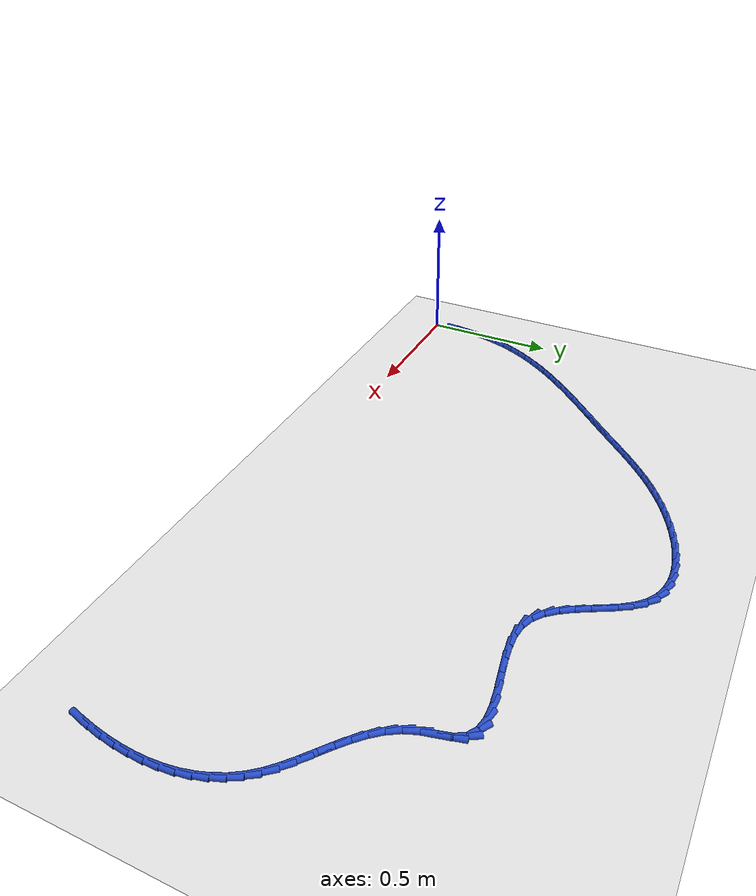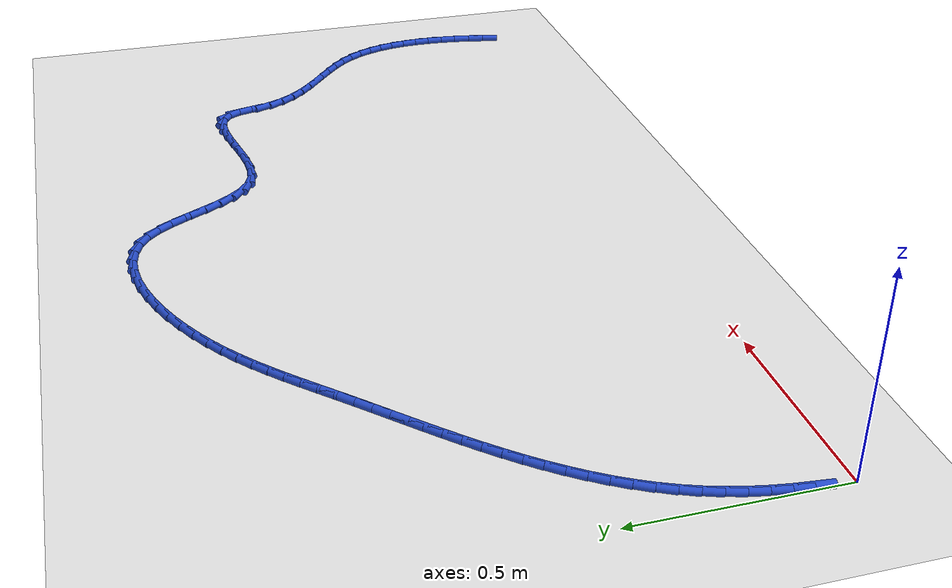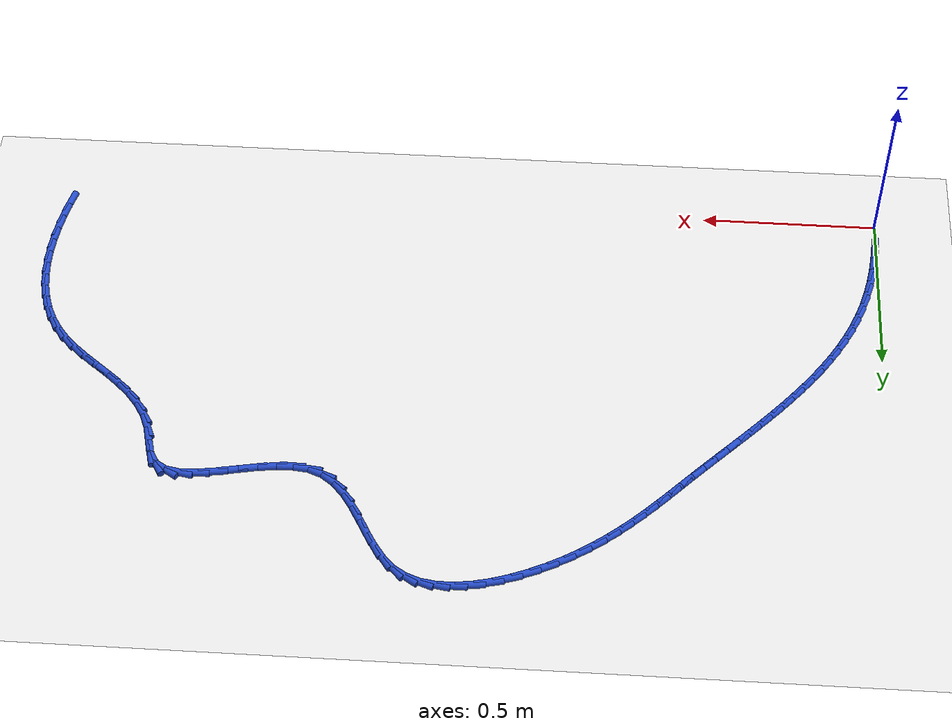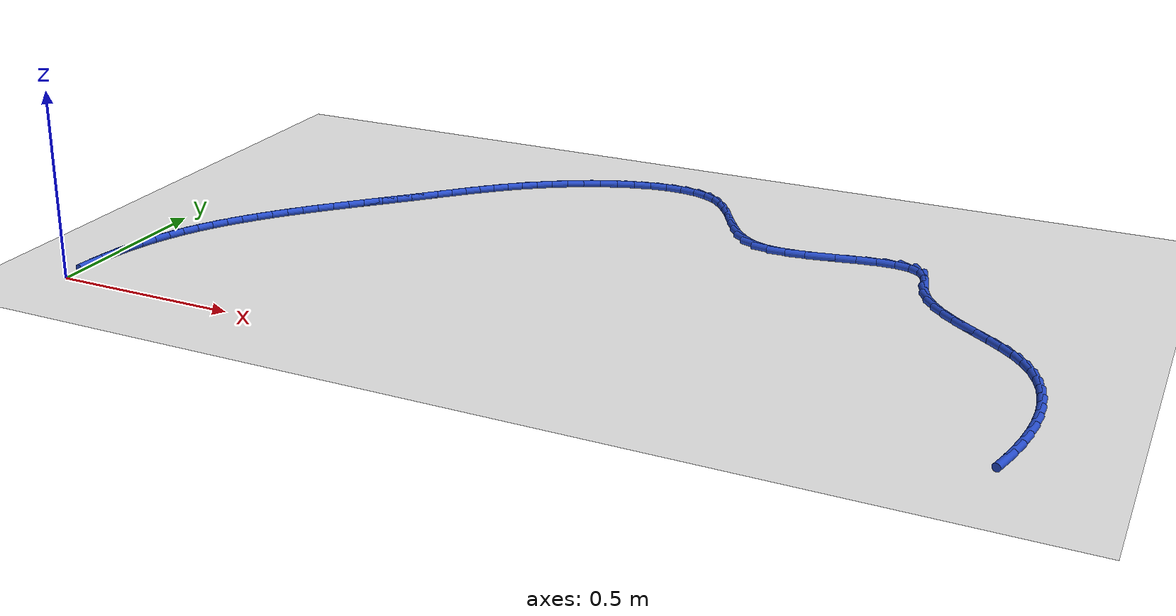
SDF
<sdf version="1.6">
 <world name="default">
  <model name="ground_plane">
   <static>1</static>
   <link name="link">
    <collision name="collision">
     <geometry><plane><normal>0 0 1</normal><size>100 100</size></plane></geometry>
     <surface><friction><ode><mu>100</mu><mu2>50</mu2></ode></friction></surface>
    </collision>
    <visual name="visual">
     <cast_shadows>0</cast_shadows>
     <geometry><plane><normal>0 0 1</normal><size>100 100</size></plane></geometry>
     <material>
      <script><uri>file://media/materials/scripts/gazebo.material</uri><name>Gazebo/WhiteGlow</name></script>
     </material>
    </visual>
   </link>
  </model>
  <model name="line">
   <link name="link_2">
    <pose>0.003360584371505938 0.08993041844704301 0.01 0 1.57 1.467205646943557</pose>
    <collision name="collision">
     <geometry><cylinder><radius>0.01</radius><length>0.08</length></cylinder></geometry>
    </collision>
    <visual name="visual">
     <material>
      <script><name>Gazebo/Blue</name><uri>file://media/materials/scripts/gazebo.material</uri></script>
     </material>
     <geometry><cylinder><radius>0.01</radius><length>0.08</length></cylinder></geometry>
    </visual>
   </link>
   <link name="link_3">
    <pose>0.008009777035274087 0.13465018043659344 0.01 0 1.57 1.4210333260894008</pose>
    <collision name="collision">
     <geometry><cylinder><radius>0.01</radius><length>0.08</length></cylinder></geometry>
    </collision>
    <visual name="visual">
     <material>
      <script><name>Gazebo/Blue</name><uri>file://media/materials/scripts/gazebo.material</uri></script>
     </material>
     <geometry><cylinder><radius>0.01</radius><length>0.08</length></cylinder></geometry>
    </visual>
   </link>
   <link name="link_4">
    <pose>0.014704103184937301 0.1790149581548181 0.01 0 1.57 1.3730587600862478</pose>
    <collision name="collision">
     <geometry><cylinder><radius>0.01</radius><length>0.08</length></cylinder></geometry>
    </collision>
    <visual name="visual">
     <material>
      <script><name>Gazebo/Blue</name><uri>file://media/materials/scripts/gazebo.material</uri></script>
     </material>
     <geometry><cylinder><radius>0.01</radius><length>0.08</length></cylinder></geometry>
    </visual>
   </link>
   <link name="link_5">
    <pose>0.023492962695909274 0.22288123701520812 0.01 0 1.57 1.3230601992094901</pose>
    <collision name="collision">
     <geometry><cylinder><radius>0.01</radius><length>0.08</length></cylinder></geometry>
    </collision>
    <visual name="visual">
     <material>
      <script><name>Gazebo/Blue</name><uri>file://media/materials/scripts/gazebo.material</uri></script>
     </material>
     <geometry><cylinder><radius>0.01</radius><length>0.08</length></cylinder></geometry>
    </visual>
   </link>
   <link name="link_6">
    <pose>0.034425755443603705 0.26610550243125464 0.01 0 1.57 1.270833187727479</pose>
    <collision name="collision">
     <geometry><cylinder><radius>0.01</radius><length>0.08</length></cylinder></geometry>
    </collision>
    <visual name="visual">
     <material>
      <script><name>Gazebo/Blue</name><uri>file://media/materials/scripts/gazebo.material</uri></script>
     </material>
     <geometry><cylinder><radius>0.01</radius><length>0.08</length></cylinder></geometry>
    </visual>
   </link>
   <link name="link_7">
    <pose>0.04755188130343429 0.3085442398164489 0.01 0 1.57 1.2161987674992394</pose>
    <collision name="collision">
     <geometry><cylinder><radius>0.01</radius><length>0.08</length></cylinder></geometry>
    </collision>
    <visual name="visual">
     <material>
      <script><name>Gazebo/Blue</name><uri>file://media/materials/scripts/gazebo.material</uri></script>
     </material>
     <geometry><cylinder><radius>0.01</radius><length>0.08</length></cylinder></geometry>
    </visual>
   </link>
   <link name="link_8">
    <pose>0.06292074015081472 0.350053934584282 0.01 0 1.57 1.159440759616084</pose>
    <collision name="collision">
     <geometry><cylinder><radius>0.01</radius><length>0.08</length></cylinder></geometry>
    </collision>
    <visual name="visual">
     <material>
      <script><name>Gazebo/Blue</name><uri>file://media/materials/scripts/gazebo.material</uri></script>
     </material>
     <geometry><cylinder><radius>0.01</radius><length>0.08</length></cylinder></geometry>
    </visual>
   </link>
   <link name="link_9">
    <pose>0.08056701617637128 0.3905044262941944 0.01 0 1.57 1.1045927002458515</pose>
    <collision name="collision">
     <geometry><cylinder><radius>0.01</radius><length>0.08</length></cylinder></geometry>
    </collision>
    <visual name="visual">
     <material>
      <script><name>Gazebo/Blue</name><uri>file://media/materials/scripts/gazebo.material</uri></script>
     </material>
     <geometry><cylinder><radius>0.01</radius><length>0.08</length></cylinder></geometry>
    </visual>
   </link>
   <link name="link_10">
    <pose>0.10038657265252682 0.4298915313004052 0.01 0 1.57 1.0540894822819367</pose>
    <collision name="collision">
     <geometry><cylinder><radius>0.01</radius><length>0.08</length></cylinder></geometry>
    </collision>
    <visual name="visual">
     <material>
      <script><name>Gazebo/Blue</name><uri>file://media/materials/scripts/gazebo.material</uri></script>
     </material>
     <geometry><cylinder><radius>0.01</radius><length>0.08</length></cylinder></geometry>
    </visual>
   </link>
   <link name="link_11">
    <pose>0.12219897173619831 0.46828030746694216 0.01 0 1.57 1.0081014676095499</pose>
    <collision name="collision">
     <geometry><cylinder><radius>0.01</radius><length>0.08</length></cylinder></geometry>
    </collision>
    <visual name="visual">
     <material>
      <script><name>Gazebo/Blue</name><uri>file://media/materials/scripts/gazebo.material</uri></script>
     </material>
     <geometry><cylinder><radius>0.01</radius><length>0.08</length></cylinder></geometry>
    </visual>
   </link>
   <link name="link_12">
    <pose>0.14582298590236115 0.5057365292760575 0.01 0 1.57 0.9666710400697017</pose>
    <collision name="collision">
     <geometry><cylinder><radius>0.01</radius><length>0.08</length></cylinder></geometry>
    </collision>
    <visual name="visual">
     <material>
      <script><name>Gazebo/Blue</name><uri>file://media/materials/scripts/gazebo.material</uri></script>
     </material>
     <geometry><cylinder><radius>0.01</radius><length>0.08</length></cylinder></geometry>
    </visual>
   </link>
   <link name="link_13">
    <pose>0.17107738762599062 0.5423259712100036 0.01 0 1.57 0.9297634189427066</pose>
    <collision name="collision">
     <geometry><cylinder><radius>0.01</radius><length>0.08</length></cylinder></geometry>
    </collision>
    <visual name="visual">
     <material>
      <script><name>Gazebo/Blue</name><uri>file://media/materials/scripts/gazebo.material</uri></script>
     </material>
     <geometry><cylinder><radius>0.01</radius><length>0.08</length></cylinder></geometry>
    </visual>
   </link>
   <link name="link_14">
    <pose>0.19778094938206198 0.5781144077510327 0.01 0 1.57 0.8972928860206639</pose>
    <collision name="collision">
     <geometry><cylinder><radius>0.01</radius><length>0.08</length></cylinder></geometry>
    </collision>
    <visual name="visual">
     <material>
      <script><name>Gazebo/Blue</name><uri>file://media/materials/scripts/gazebo.material</uri></script>
     </material>
     <geometry><cylinder><radius>0.01</radius><length>0.08</length></cylinder></geometry>
    </visual>
   </link>
   <link name="link_15">
    <pose>0.22575244364555064 0.6131676133813969 0.01 0 1.57 0.8691454915981053</pose>
    <collision name="collision">
     <geometry><cylinder><radius>0.01</radius><length>0.08</length></cylinder></geometry>
    </collision>
    <visual name="visual">
     <material>
      <script><name>Gazebo/Blue</name><uri>file://media/materials/scripts/gazebo.material</uri></script>
     </material>
     <geometry><cylinder><radius>0.01</radius><length>0.08</length></cylinder></geometry>
    </visual>
   </link>
   <link name="link_16">
    <pose>0.2548106428914319 0.6475513625833488 0.01 0 1.57 0.8451976060924352</pose>
    <collision name="collision">
     <geometry><cylinder><radius>0.01</radius><length>0.08</length></cylinder></geometry>
    </collision>
    <visual name="visual">
     <material>
      <script><name>Gazebo/Blue</name><uri>file://media/materials/scripts/gazebo.material</uri></script>
     </material>
     <geometry><cylinder><radius>0.01</radius><length>0.08</length></cylinder></geometry>
    </visual>
   </link>
   <link name="link_17">
    <pose>0.2847743195946811 0.6813314298391403 0.01 0 1.57 0.825330462949806</pose>
    <collision name="collision">
     <geometry><cylinder><radius>0.01</radius><length>0.08</length></cylinder></geometry>
    </collision>
    <visual name="visual">
     <material>
      <script><name>Gazebo/Blue</name><uri>file://media/materials/scripts/gazebo.material</uri></script>
     </material>
     <geometry><cylinder><radius>0.01</radius><length>0.08</length></cylinder></geometry>
    </visual>
   </link>
   <link name="link_18">
    <pose>0.3154622462302733 0.7145735896310237 0.01 0 1.57 0.8094412529035325</pose>
    <collision name="collision">
     <geometry><cylinder><radius>0.01</radius><length>0.08</length></cylinder></geometry>
    </collision>
    <visual name="visual">
     <material>
      <script><name>Gazebo/Blue</name><uri>file://media/materials/scripts/gazebo.material</uri></script>
     </material>
     <geometry><cylinder><radius>0.01</radius><length>0.08</length></cylinder></geometry>
    </visual>
   </link>
   <link name="link_19">
    <pose>0.3466931952731842 0.7473436164412515 0.01 0 1.57 0.7974514825935187</pose>
    <collision name="collision">
     <geometry><cylinder><radius>0.01</radius><length>0.08</length></cylinder></geometry>
    </collision>
    <visual name="visual">
     <material>
      <script><name>Gazebo/Blue</name><uri>file://media/materials/scripts/gazebo.material</uri></script>
     </material>
     <geometry><cylinder><radius>0.01</radius><length>0.08</length></cylinder></geometry>
    </visual>
   </link>
   <link name="link_20">
    <pose>0.37828593919838904 0.7797072847520758 0.01 0 1.57 0.7893133020622984</pose>
    <collision name="collision">
     <geometry><cylinder><radius>0.01</radius><length>0.08</length></cylinder></geometry>
    </collision>
    <visual name="visual">
     <material>
      <script><name>Gazebo/Blue</name><uri>file://media/materials/scripts/gazebo.material</uri></script>
     </material>
     <geometry><cylinder><radius>0.01</radius><length>0.08</length></cylinder></geometry>
    </visual>
   </link>
   <link name="link_21">
    <pose>0.410059250480863 0.8117303690457488 0.01 0 1.57 0.7850144102576346</pose>
    <collision name="collision">
     <geometry><cylinder><radius>0.01</radius><length>0.08</length></cylinder></geometry>
    </collision>
    <visual name="visual">
     <material>
      <script><name>Gazebo/Blue</name><uri>file://media/materials/scripts/gazebo.material</uri></script>
     </material>
     <geometry><cylinder><radius>0.01</radius><length>0.08</length></cylinder></geometry>
    </visual>
   </link>
   <link name="link_22">
    <pose>0.4418319015955813 0.8434786438045226 0.01 0 1.57 0.784582010984684</pose>
    <collision name="collision">
     <geometry><cylinder><radius>0.01</radius><length>0.08</length></cylinder></geometry>
    </collision>
    <visual name="visual">
     <material>
      <script><name>Gazebo/Blue</name><uri>file://media/materials/scripts/gazebo.material</uri></script>
     </material>
     <geometry><cylinder><radius>0.01</radius><length>0.08</length></cylinder></geometry>
    </visual>
   </link>
   <link name="link_23">
    <pose>0.4734226650175196 0.8750178835106501 0.01 0 1.57 0.7880861349082375</pose>
    <collision name="collision">
     <geometry><cylinder><radius>0.01</radius><length>0.08</length></cylinder></geometry>
    </collision>
    <visual name="visual">
     <material>
      <script><name>Gazebo/Blue</name><uri>file://media/materials/scripts/gazebo.material</uri></script>
     </material>
     <geometry><cylinder><radius>0.01</radius><length>0.08</length></cylinder></geometry>
    </visual>
   </link>
   <link name="link_24">
    <pose>0.5046503132216529 0.9064138626463831 0.01 0 1.57 0.7952662238021395</pose>
    <collision name="collision">
     <geometry><cylinder><radius>0.01</radius><length>0.08</length></cylinder></geometry>
    </collision>
    <visual name="visual">
     <material>
      <script><name>Gazebo/Blue</name><uri>file://media/materials/scripts/gazebo.material</uri></script>
     </material>
     <geometry><cylinder><radius>0.01</radius><length>0.08</length></cylinder></geometry>
    </visual>
   </link>
   <link name="link_25">
    <pose>0.5353508783307751 0.9377263966275668 0.01 0 1.57 0.8001773195195335</pose>
    <collision name="collision">
     <geometry><cylinder><radius>0.01</radius><length>0.08</length></cylinder></geometry>
    </collision>
    <visual name="visual">
     <material>
      <script><name>Gazebo/Blue</name><uri>file://media/materials/scripts/gazebo.material</uri></script>
     </material>
     <geometry><cylinder><radius>0.01</radius><length>0.08</length></cylinder></geometry>
    </visual>
   </link>
   <link name="link_26">
    <pose>0.5656359662996261 0.9689201562424271 0.01 0 1.57 0.7978334553509787</pose>
    <collision name="collision">
     <geometry><cylinder><radius>0.01</radius><length>0.08</length></cylinder></geometry>
    </collision>
    <visual name="visual">
     <material>
      <script><name>Gazebo/Blue</name><uri>file://media/materials/scripts/gazebo.material</uri></script>
     </material>
     <geometry><cylinder><radius>0.01</radius><length>0.08</length></cylinder></geometry>
    </visual>
   </link>
   <link name="link_27">
    <pose>0.5958385420707335 0.999883385869923 0.01 0 1.57 0.7880096218687553</pose>
    <collision name="collision">
     <geometry><cylinder><radius>0.01</radius><length>0.08</length></cylinder></geometry>
    </collision>
    <visual name="visual">
     <material>
      <script><name>Gazebo/Blue</name><uri>file://media/materials/scripts/gazebo.material</uri></script>
     </material>
     <geometry><cylinder><radius>0.01</radius><length>0.08</length></cylinder></geometry>
    </visual>
   </link>
   <link name="link_28">
    <pose>0.626297823880016 1.0305021708767925 0.01 0 1.57 0.7707823440768787</pose>
    <collision name="collision">
     <geometry><cylinder><radius>0.01</radius><length>0.08</length></cylinder></geometry>
    </collision>
    <visual name="visual">
     <material>
      <script><name>Gazebo/Blue</name><uri>file://media/materials/scripts/gazebo.material</uri></script>
     </material>
     <geometry><cylinder><radius>0.01</radius><length>0.08</length></cylinder></geometry>
    </visual>
   </link>
   <link name="link_29">
    <pose>0.6573530299633915 1.0606625966297727 0.01 0 1.57 0.7464076185970759</pose>
    <collision name="collision">
     <geometry><cylinder><radius>0.01</radius><length>0.08</length></cylinder></geometry>
    </collision>
    <visual name="visual">
     <material>
      <script><name>Gazebo/Blue</name><uri>file://media/materials/scripts/gazebo.material</uri></script>
     </material>
     <geometry><cylinder><radius>0.01</radius><length>0.08</length></cylinder></geometry>
    </visual>
   </link>
   <link name="link_30">
    <pose>0.6893433785567781 1.0902507484956019 0.01 0 1.57 0.7153348200042154</pose>
    <collision name="collision">
     <geometry><cylinder><radius>0.01</radius><length>0.08</length></cylinder></geometry>
    </collision>
    <visual name="visual">
     <material>
      <script><name>Gazebo/Blue</name><uri>file://media/materials/scripts/gazebo.material</uri></script>
     </material>
     <geometry><cylinder><radius>0.01</radius><length>0.08</length></cylinder></geometry>
    </visual>
   </link>
   <link name="link_31">
    <pose>0.7226080878960943 1.1191527118410178 0.01 0 1.57 0.6782142600411807</pose>
    <collision name="collision">
     <geometry><cylinder><radius>0.01</radius><length>0.08</length></cylinder></geometry>
    </collision>
    <visual name="visual">
     <material>
      <script><name>Gazebo/Blue</name><uri>file://media/materials/scripts/gazebo.material</uri></script>
     </material>
     <geometry><cylinder><radius>0.01</radius><length>0.08</length></cylinder></geometry>
    </visual>
   </link>
   <link name="link_32">
    <pose>0.7574863762172586 1.1472545720327583 0.01 0 1.57 0.63589103589535</pose>
    <collision name="collision">
     <geometry><cylinder><radius>0.01</radius><length>0.08</length></cylinder></geometry>
    </collision>
    <visual name="visual">
     <material>
      <script><name>Gazebo/Blue</name><uri>file://media/materials/scripts/gazebo.material</uri></script>
     </material>
     <geometry><cylinder><radius>0.01</radius><length>0.08</length></cylinder></geometry>
    </visual>
   </link>
   <link name="link_33">
    <pose>0.7943174617561888 1.1744424144375614 0.01 0 1.57 0.589378813272113</pose>
    <collision name="collision">
     <geometry><cylinder><radius>0.01</radius><length>0.08</length></cylinder></geometry>
    </collision>
    <visual name="visual">
     <material>
      <script><name>Gazebo/Blue</name><uri>file://media/materials/scripts/gazebo.material</uri></script>
     </material>
     <geometry><cylinder><radius>0.01</radius><length>0.08</length></cylinder></geometry>
    </visual>
   </link>
   <link name="link_34">
    <pose>0.8334405627488032 1.2006023244221642 0.01 0 1.57 0.5398117279089382</pose>
    <collision name="collision">
     <geometry><cylinder><radius>0.01</radius><length>0.08</length></cylinder></geometry>
    </collision>
    <visual name="visual">
     <material>
      <script><name>Gazebo/Blue</name><uri>file://media/materials/scripts/gazebo.material</uri></script>
     </material>
     <geometry><cylinder><radius>0.01</radius><length>0.08</length></cylinder></geometry>
    </visual>
   </link>
   <link name="link_35">
    <pose>0.8751938271506271 1.2256197836267408 0.01 0 1.57 0.4881976379000375</pose>
    <collision name="collision">
     <geometry><cylinder><radius>0.01</radius><length>0.08</length></cylinder></geometry>
    </collision>
    <visual name="visual">
     <material>
      <script><name>Gazebo/Blue</name><uri>file://media/materials/scripts/gazebo.material</uri></script>
     </material>
     <geometry><cylinder><radius>0.01</radius><length>0.08</length></cylinder></geometry>
    </visual>
   </link>
   <link name="link_36">
    <pose>0.9196133794914927 1.2492099075273868 0.01 0 1.57 0.4334016457917671</pose>
    <collision name="collision">
     <geometry><cylinder><radius>0.01</radius><length>0.08</length></cylinder></geometry>
    </collision>
    <visual name="visual">
     <material>
      <script><name>Gazebo/Blue</name><uri>file://media/materials/scripts/gazebo.material</uri></script>
     </material>
     <geometry><cylinder><radius>0.01</radius><length>0.08</length></cylinder></geometry>
    </visual>
   </link>
   <link name="link_37">
    <pose>0.9660202184467447 1.270684421537381 0.01 0 1.57 0.37265274625030415</pose>
    <collision name="collision">
     <geometry><cylinder><radius>0.01</radius><length>0.08</length></cylinder></geometry>
    </collision>
    <visual name="visual">
     <material>
      <script><name>Gazebo/Blue</name><uri>file://media/materials/scripts/gazebo.material</uri></script>
     </material>
     <geometry><cylinder><radius>0.01</radius><length>0.08</length></cylinder></geometry>
    </visual>
   </link>
   <link name="link_38">
    <pose>1.0136318439437413 1.2892966692254786 0.01 0 1.57 0.3027469280048957</pose>
    <collision name="collision">
     <geometry><cylinder><radius>0.01</radius><length>0.08</length></cylinder></geometry>
    </collision>
    <visual name="visual">
     <material>
      <script><name>Gazebo/Blue</name><uri>file://media/materials/scripts/gazebo.material</uri></script>
     </material>
     <geometry><cylinder><radius>0.01</radius><length>0.08</length></cylinder></geometry>
    </visual>
   </link>
   <link name="link_39">
    <pose>1.0616657559098408 1.3042999941604352 0.01 0 1.57 0.21973990278762615</pose>
    <collision name="collision">
     <geometry><cylinder><radius>0.01</radius><length>0.08</length></cylinder></geometry>
    </collision>
    <visual name="visual">
     <material>
      <script><name>Gazebo/Blue</name><uri>file://media/materials/scripts/gazebo.material</uri></script>
     </material>
     <geometry><cylinder><radius>0.01</radius><length>0.08</length></cylinder></geometry>
    </visual>
   </link>
   <link name="link_40">
    <pose>1.1093394542724015 1.3149477399110054 0.01 0 1.57 0.11861937313041776</pose>
    <collision name="collision">
     <geometry><cylinder><radius>0.01</radius><length>0.08</length></cylinder></geometry>
    </collision>
    <visual name="visual">
     <material>
      <script><name>Gazebo/Blue</name><uri>file://media/materials/scripts/gazebo.material</uri></script>
     </material>
     <geometry><cylinder><radius>0.01</radius><length>0.08</length></cylinder></geometry>
    </visual>
   </link>
   <link name="link_41">
    <pose>1.155870438958781 1.320493250045944 0.01 0 1.57 -0.006801300092596281</pose>
    <collision name="collision">
     <geometry><cylinder><radius>0.01</radius><length>0.08</length></cylinder></geometry>
    </collision>
    <visual name="visual">
     <material>
      <script><name>Gazebo/Blue</name><uri>file://media/materials/scripts/gazebo.material</uri></script>
     </material>
     <geometry><cylinder><radius>0.01</radius><length>0.08</length></cylinder></geometry>
    </visual>
   </link>
   <link name="link_42">
    <pose>1.2004762098963384 1.320189868134007 0.01 0 1.57 -0.16319552607183252</pose>
    <collision name="collision">
     <geometry><cylinder><radius>0.01</radius><length>0.08</length></cylinder></geometry>
    </collision>
    <visual name="visual">
     <material>
      <script><name>Gazebo/Blue</name><uri>file://media/materials/scripts/gazebo.material</uri></script>
     </material>
     <geometry><cylinder><radius>0.01</radius><length>0.08</length></cylinder></geometry>
    </visual>
   </link>
   <link name="link_43">
    <pose>1.242374267012431 1.3132909377439492 0.01 0 1.57 -0.35507212002220323</pose>
    <collision name="collision">
     <geometry><cylinder><radius>0.01</radius><length>0.08</length></cylinder></geometry>
    </collision>
    <visual name="visual">
     <material>
      <script><name>Gazebo/Blue</name><uri>file://media/materials/scripts/gazebo.material</uri></script>
     </material>
     <geometry><cylinder><radius>0.01</radius><length>0.08</length></cylinder></geometry>
    </visual>
   </link>
   <link name="link_44">
    <pose>1.2807821102344172 1.2990498024445258 0.01 0 1.57 -0.579289478295245</pose>
    <collision name="collision">
     <geometry><cylinder><radius>0.01</radius><length>0.08</length></cylinder></geometry>
    </collision>
    <visual name="visual">
     <material>
      <script><name>Gazebo/Blue</name><uri>file://media/materials/scripts/gazebo.material</uri></script>
     </material>
     <geometry><cylinder><radius>0.01</radius><length>0.08</length></cylinder></geometry>
    </visual>
   </link>
   <link name="link_45">
    <pose>1.314917424493047 1.2767200701862176 0.01 0 1.57 -0.8018398310301932</pose>
    <collision name="collision">
     <geometry><cylinder><radius>0.01</radius><length>0.08</length></cylinder></geometry>
    </collision>
    <visual name="visual">
     <material>
      <script><name>Gazebo/Blue</name><uri>file://media/materials/scripts/gazebo.material</uri></script>
     </material>
     <geometry><cylinder><radius>0.01</radius><length>0.08</length></cylinder></geometry>
    </visual>
   </link>
   <link name="link_46">
    <pose>1.3444494332299732 1.2462006264479748 0.01 0 1.57 -0.955061525291664</pose>
    <collision name="collision">
     <geometry><cylinder><radius>0.01</radius><length>0.08</length></cylinder></geometry>
    </collision>
    <visual name="visual">
     <material>
      <script><name>Gazebo/Blue</name><uri>file://media/materials/scripts/gazebo.material</uri></script>
     </material>
     <geometry><cylinder><radius>0.01</radius><length>0.08</length></cylinder></geometry>
    </visual>
   </link>
   <link name="link_47">
    <pose>1.370469469846823 1.209422643164982 0.01 0 1.57 -1.0402813294921625</pose>
    <collision name="collision">
     <geometry><cylinder><radius>0.01</radius><length>0.08</length></cylinder></geometry>
    </collision>
    <visual name="visual">
     <material>
      <script><name>Gazebo/Blue</name><uri>file://media/materials/scripts/gazebo.material</uri></script>
     </material>
     <geometry><cylinder><radius>0.01</radius><length>0.08</length></cylinder></geometry>
    </visual>
   </link>
   <link name="link_48">
    <pose>1.3943481317520778 1.1687163784716794 0.01 0 1.57 -1.0708519129498313</pose>
    <collision name="collision">
     <geometry><cylinder><radius>0.01</radius><length>0.08</length></cylinder></geometry>
    </collision>
    <visual name="visual">
     <material>
      <script><name>Gazebo/Blue</name><uri>file://media/materials/scripts/gazebo.material</uri></script>
     </material>
     <geometry><cylinder><radius>0.01</radius><length>0.08</length></cylinder></geometry>
    </visual>
   </link>
   <link name="link_49">
    <pose>1.41745601635422 1.126412090502506 0.01 0 1.57 -1.0525165912882224</pose>
    <collision name="collision">
     <geometry><cylinder><radius>0.01</radius><length>0.08</length></cylinder></geometry>
    </collision>
    <visual name="visual">
     <material>
      <script><name>Gazebo/Blue</name><uri>file://media/materials/scripts/gazebo.material</uri></script>
     </material>
     <geometry><cylinder><radius>0.01</radius><length>0.08</length></cylinder></geometry>
    </visual>
   </link>
   <link name="link_50">
    <pose>1.4411637210617294 1.0848400373918987 0.01 0 1.57 -0.9827023643132725</pose>
    <collision name="collision">
     <geometry><cylinder><radius>0.01</radius><length>0.08</length></cylinder></geometry>
    </collision>
    <visual name="visual">
     <material>
      <script><name>Gazebo/Blue</name><uri>file://media/materials/scripts/gazebo.material</uri></script>
     </material>
     <geometry><cylinder><radius>0.01</radius><length>0.08</length></cylinder></geometry>
    </visual>
   </link>
   <link name="link_51">
    <pose>1.4668418432830894 1.0463304772742996 0.01 0 1.57 -0.851249692300802</pose>
    <collision name="collision">
     <geometry><cylinder><radius>0.01</radius><length>0.08</length></cylinder></geometry>
    </collision>
    <visual name="visual">
     <material>
      <script><name>Gazebo/Blue</name><uri>file://media/materials/scripts/gazebo.material</uri></script>
     </material>
     <geometry><cylinder><radius>0.01</radius><length>0.08</length></cylinder></geometry>
    </visual>
   </link>
   <link name="link_52">
    <pose>1.49586098042678 1.0132136682841453 0.01 0 1.57 -0.6453151404989103</pose>
    <collision name="collision">
     <geometry><cylinder><radius>0.01</radius><length>0.08</length></cylinder></geometry>
    </collision>
    <visual name="visual">
     <material>
      <script><name>Gazebo/Blue</name><uri>file://media/materials/scripts/gazebo.material</uri></script>
     </material>
     <geometry><cylinder><radius>0.01</radius><length>0.08</length></cylinder></geometry>
    </visual>
   </link>
   <link name="link_53">
    <pose>1.5295917299012833 0.9878198685558764 0.01 0 1.57 -0.3691657277952403</pose>
    <collision name="collision">
     <geometry><cylinder><radius>0.01</radius><length>0.08</length></cylinder></geometry>
    </collision>
    <visual name="visual">
     <material>
      <script><name>Gazebo/Blue</name><uri>file://media/materials/scripts/gazebo.material</uri></script>
     </material>
     <geometry><cylinder><radius>0.01</radius><length>0.08</length></cylinder></geometry>
    </visual>
   </link>
   <link name="link_54">
    <pose>1.5693721460366301 0.9724286786203823 0.01 0 1.57 -0.11212887094343497</pose>
    <collision name="collision">
     <geometry><cylinder><radius>0.01</radius><length>0.08</length></cylinder></geometry>
    </collision>
    <visual name="visual">
     <material>
      <script><name>Gazebo/Blue</name><uri>file://media/materials/scripts/gazebo.material</uri></script>
     </material>
     <geometry><cylinder><radius>0.01</radius><length>0.08</length></cylinder></geometry>
    </visual>
   </link>
   <link name="link_55">
    <pose>1.615220990094419 0.967266044947333 0.01 0 1.57 0.05124510057745135</pose>
    <collision name="collision">
     <geometry><cylinder><radius>0.01</radius><length>0.08</length></cylinder></geometry>
    </collision>
    <visual name="visual">
     <material>
      <script><name>Gazebo/Blue</name><uri>file://media/materials/scripts/gazebo.material</uri></script>
     </material>
     <geometry><cylinder><radius>0.01</radius><length>0.08</length></cylinder></geometry>
    </visual>
   </link>
   <link name="link_56">
    <pose>1.6654111946066468 0.9698403008038959 0.01 0 1.57 0.1438754948492338</pose>
    <collision name="collision">
     <geometry><cylinder><radius>0.01</radius><length>0.08</length></cylinder></geometry>
    </collision>
    <visual name="visual">
     <material>
      <script><name>Gazebo/Blue</name><uri>file://media/materials/scripts/gazebo.material</uri></script>
     </material>
     <geometry><cylinder><radius>0.01</radius><length>0.08</length></cylinder></geometry>
    </visual>
   </link>
   <link name="link_57">
    <pose>1.7180957378218271 0.9774730547579817 0.01 0 1.57 0.18558589622574742</pose>
    <collision name="collision">
     <geometry><cylinder><radius>0.01</radius><length>0.08</length></cylinder></geometry>
    </collision>
    <visual name="visual">
     <material>
      <script><name>Gazebo/Blue</name><uri>file://media/materials/scripts/gazebo.material</uri></script>
     </material>
     <geometry><cylinder><radius>0.01</radius><length>0.08</length></cylinder></geometry>
    </visual>
   </link>
   <link name="link_58">
    <pose>1.7714275979884766 0.9874859153775016 0.01 0 1.57 0.1842321169352124</pose>
    <collision name="collision">
     <geometry><cylinder><radius>0.01</radius><length>0.08</length></cylinder></geometry>
    </collision>
    <visual name="visual">
     <material>
      <script><name>Gazebo/Blue</name><uri>file://media/materials/scripts/gazebo.material</uri></script>
     </material>
     <geometry><cylinder><radius>0.01</radius><length>0.08</length></cylinder></geometry>
    </visual>
   </link>
   <link name="link_59">
    <pose>1.823559753355109 0.9972004912303671 0.01 0 1.57 0.1364162802884932</pose>
    <collision name="collision">
     <geometry><cylinder><radius>0.01</radius><length>0.08</length></cylinder></geometry>
    </collision>
    <visual name="visual">
     <material>
      <script><name>Gazebo/Blue</name><uri>file://media/materials/scripts/gazebo.material</uri></script>
     </material>
     <geometry><cylinder><radius>0.01</radius><length>0.08</length></cylinder></geometry>
    </visual>
   </link>
   <link name="link_60">
    <pose>1.87264518217024 1.0039383908844899 0.01 0 1.57 0.024498172003528735</pose>
    <collision name="collision">
     <geometry><cylinder><radius>0.01</radius><length>0.08</length></cylinder></geometry>
    </collision>
    <visual name="visual">
     <material>
      <script><name>Gazebo/Blue</name><uri>file://media/materials/scripts/gazebo.material</uri></script>
     </material>
     <geometry><cylinder><radius>0.01</radius><length>0.08</length></cylinder></geometry>
    </visual>
   </link>
   <link name="link_61">
    <pose>1.9168368626823842 1.0050212229077806 0.01 0 1.57 -0.19123757411691705</pose>
    <collision name="collision">
     <geometry><cylinder><radius>0.01</radius><length>0.08</length></cylinder></geometry>
    </collision>
    <visual name="visual">
     <material>
      <script><name>Gazebo/Blue</name><uri>file://media/materials/scripts/gazebo.material</uri></script>
     </material>
     <geometry><cylinder><radius>0.01</radius><length>0.08</length></cylinder></geometry>
    </visual>
   </link>
   <link name="link_62">
    <pose>1.9542877731400556 0.9977705958681506 0.01 0 1.57 -0.5641365989672306</pose>
    <collision name="collision">
     <geometry><cylinder><radius>0.01</radius><length>0.08</length></cylinder></geometry>
    </collision>
    <visual name="visual">
     <material>
      <script><name>Gazebo/Blue</name><uri>file://media/materials/scripts/gazebo.material</uri></script>
     </material>
     <geometry><cylinder><radius>0.01</radius><length>0.08</length></cylinder></geometry>
    </visual>
   </link>
   <link name="link_63">
    <pose>1.9831508917917704 0.9795081183335113 0.01 0 1.57 -1.0422940859451832</pose>
    <collision name="collision">
     <geometry><cylinder><radius>0.01</radius><length>0.08</length></cylinder></geometry>
    </collision>
    <visual name="visual">
     <material>
      <script><name>Gazebo/Blue</name><uri>file://media/materials/scripts/gazebo.material</uri></script>
     </material>
     <geometry><cylinder><radius>0.01</radius><length>0.08</length></cylinder></geometry>
    </visual>
   </link>
   <link name="link_64">
    <pose>2.0017169995100073 0.9477117656679577 0.01 0 1.57 -1.322288002110685</pose>
    <collision name="collision">
     <geometry><cylinder><radius>0.01</radius><length>0.08</length></cylinder></geometry>
    </collision>
    <visual name="visual">
     <material>
      <script><name>Gazebo/Blue</name><uri>file://media/materials/scripts/gazebo.material</uri></script>
     </material>
     <geometry><cylinder><radius>0.01</radius><length>0.08</length></cylinder></geometry>
    </visual>
   </link>
   <link name="link_65">
    <pose>2.012611559870927 0.9047781456051913 0.01 0 1.57 -1.3365317207906346</pose>
    <collision name="collision">
     <geometry><cylinder><radius>0.01</radius><length>0.08</length></cylinder></geometry>
    </collision>
    <visual name="visual">
     <material>
      <script><name>Gazebo/Blue</name><uri>file://media/materials/scripts/gazebo.material</uri></script>
     </material>
     <geometry><cylinder><radius>0.01</radius><length>0.08</length></cylinder></geometry>
    </visual>
   </link>
   <link name="link_66">
    <pose>2.0235618759777227 0.8588930155090523 0.01 0 1.57 -1.1810696576388164</pose>
    <collision name="collision">
     <geometry><cylinder><radius>0.01</radius><length>0.08</length></cylinder></geometry>
    </collision>
    <visual name="visual">
     <material>
      <script><name>Gazebo/Blue</name><uri>file://media/materials/scripts/gazebo.material</uri></script>
     </material>
     <geometry><cylinder><radius>0.01</radius><length>0.08</length></cylinder></geometry>
    </visual>
   </link>
   <link name="link_67">
    <pose>2.0408406805507453 0.8168250490371916 0.01 0 1.57 -1.0103549081098813</pose>
    <collision name="collision">
     <geometry><cylinder><radius>0.01</radius><length>0.08</length></cylinder></geometry>
    </collision>
    <visual name="visual">
     <material>
      <script><name>Gazebo/Blue</name><uri>file://media/materials/scripts/gazebo.material</uri></script>
     </material>
     <geometry><cylinder><radius>0.01</radius><length>0.08</length></cylinder></geometry>
    </visual>
   </link>
   <link name="link_68">
    <pose>2.064503648687051 0.7791190232605067 0.01 0 1.57 -0.872021855829654</pose>
    <collision name="collision">
     <geometry><cylinder><radius>0.01</radius><length>0.08</length></cylinder></geometry>
    </collision>
    <visual name="visual">
     <material>
      <script><name>Gazebo/Blue</name><uri>file://media/materials/scripts/gazebo.material</uri></script>
     </material>
     <geometry><cylinder><radius>0.01</radius><length>0.08</length></cylinder></geometry>
    </visual>
   </link>
   <link name="link_69">
    <pose>2.093224158769332 0.7449358979646594 0.01 0 1.57 -0.7705102090995946</pose>
    <collision name="collision">
     <geometry><cylinder><radius>0.01</radius><length>0.08</length></cylinder></geometry>
    </collision>
    <visual name="visual">
     <material>
      <script><name>Gazebo/Blue</name><uri>file://media/materials/scripts/gazebo.material</uri></script>
     </material>
     <geometry><cylinder><radius>0.01</radius><length>0.08</length></cylinder></geometry>
    </visual>
   </link>
   <link name="link_70">
    <pose>2.1256755891802803 0.7134366329353097 0.01 0 1.57 -0.7049448520628551</pose>
    <collision name="collision">
     <geometry><cylinder><radius>0.01</radius><length>0.08</length></cylinder></geometry>
    </collision>
    <visual name="visual">
     <material>
      <script><name>Gazebo/Blue</name><uri>file://media/materials/scripts/gazebo.material</uri></script>
     </material>
     <geometry><cylinder><radius>0.01</radius><length>0.08</length></cylinder></geometry>
    </visual>
   </link>
   <link name="link_71">
    <pose>2.160531318302586 0.6837821879581183 0.01 0 1.57 -0.6730747426169894</pose>
    <collision name="collision">
     <geometry><cylinder><radius>0.01</radius><length>0.08</length></cylinder></geometry>
    </collision>
    <visual name="visual">
     <material>
      <script><name>Gazebo/Blue</name><uri>file://media/materials/scripts/gazebo.material</uri></script>
     </material>
     <geometry><cylinder><radius>0.01</radius><length>0.08</length></cylinder></geometry>
    </visual>
   </link>
   <link name="link_72">
    <pose>2.196464724518941 0.6551335228187466 0.01 0 1.57 -0.6736182500969977</pose>
    <collision name="collision">
     <geometry><cylinder><radius>0.01</radius><length>0.08</length></cylinder></geometry>
    </collision>
    <visual name="visual">
     <material>
      <script><name>Gazebo/Blue</name><uri>file://media/materials/scripts/gazebo.material</uri></script>
     </material>
     <geometry><cylinder><radius>0.01</radius><length>0.08</length></cylinder></geometry>
    </visual>
   </link>
   <link name="link_73">
    <pose>2.2321491862120353 0.626651597302855 0.01 0 1.57 -0.707239258921154</pose>
    <collision name="collision">
     <geometry><cylinder><radius>0.01</radius><length>0.08</length></cylinder></geometry>
    </collision>
    <visual name="visual">
     <material>
      <script><name>Gazebo/Blue</name><uri>file://media/materials/scripts/gazebo.material</uri></script>
     </material>
     <geometry><cylinder><radius>0.01</radius><length>0.08</length></cylinder></geometry>
    </visual>
   </link>
   <link name="link_74">
    <pose>2.2662580817645623 0.5974973711961041 0.01 0 1.57 -0.7766522899371278</pose>
    <collision name="collision">
     <geometry><cylinder><radius>0.01</radius><length>0.08</length></cylinder></geometry>
    </collision>
    <visual name="visual">
     <material>
      <script><name>Gazebo/Blue</name><uri>file://media/materials/scripts/gazebo.material</uri></script>
     </material>
     <geometry><cylinder><radius>0.01</radius><length>0.08</length></cylinder></geometry>
    </visual>
   </link>
   <link name="link_75">
    <pose>2.297464789559211 0.5668318042841551 0.01 0 1.57 -0.883912416396191</pose>
    <collision name="collision">
     <geometry><cylinder><radius>0.01</radius><length>0.08</length></cylinder></geometry>
    </collision>
    <visual name="visual">
     <material>
      <script><name>Gazebo/Blue</name><uri>file://media/materials/scripts/gazebo.material</uri></script>
     </material>
     <geometry><cylinder><radius>0.01</radius><length>0.08</length></cylinder></geometry>
    </visual>
   </link>
   <link name="link_76">
    <pose>2.3245060985198216 0.5338590543938475 0.01 0 1.57 -1.0062643681936663</pose>
    <collision name="collision">
     <geometry><cylinder><radius>0.01</radius><length>0.08</length></cylinder></geometry>
    </collision>
    <visual name="visual">
     <material>
      <script><name>Gazebo/Blue</name><uri>file://media/materials/scripts/gazebo.material</uri></script>
     </material>
     <geometry><cylinder><radius>0.01</radius><length>0.08</length></cylinder></geometry>
    </visual>
   </link>
   <link name="link_77">
    <pose>2.3469804599535924 0.4983702815514305 0.01 0 1.57 -1.1235366931615218</pose>
    <collision name="collision">
     <geometry><cylinder><radius>0.01</radius><length>0.08</length></cylinder></geometry>
    </collision>
    <visual name="visual">
     <material>
      <script><name>Gazebo/Blue</name><uri>file://media/materials/scripts/gazebo.material</uri></script>
     </material>
     <geometry><cylinder><radius>0.01</radius><length>0.08</length></cylinder></geometry>
    </visual>
   </link>
   <link name="link_78">
    <pose>2.3651077103572464 0.46057996062197365 0.01 0 1.57 -1.2327835713012818</pose>
    <collision name="collision">
     <geometry><cylinder><radius>0.01</radius><length>0.08</length></cylinder></geometry>
    </collision>
    <visual name="visual">
     <material>
      <script><name>Gazebo/Blue</name><uri>file://media/materials/scripts/gazebo.material</uri></script>
     </material>
     <geometry><cylinder><radius>0.01</radius><length>0.08</length></cylinder></geometry>
    </visual>
   </link>
   <link name="link_79">
    <pose>2.379121425588688 0.4207119263258525 0.01 0 1.57 -1.3325223413943446</pose>
    <collision name="collision">
     <geometry><cylinder><radius>0.01</radius><length>0.08</length></cylinder></geometry>
    </collision>
    <visual name="visual">
     <material>
      <script><name>Gazebo/Blue</name><uri>file://media/materials/scripts/gazebo.material</uri></script>
     </material>
     <geometry><cylinder><radius>0.01</radius><length>0.08</length></cylinder></geometry>
    </visual>
   </link>
   <link name="link_80">
    <pose>2.3892551815058205 0.37899001338344374 0.01 0 1.57 -1.422254287748762</pose>
    <collision name="collision">
     <geometry><cylinder><radius>0.01</radius><length>0.08</length></cylinder></geometry>
    </collision>
    <visual name="visual">
     <material>
      <script><name>Gazebo/Blue</name><uri>file://media/materials/scripts/gazebo.material</uri></script>
     </material>
     <geometry><cylinder><radius>0.01</radius><length>0.08</length></cylinder></geometry>
    </visual>
   </link>
   <link name="link_81">
    <pose>2.3957425539665484 0.33563805651512324 0.01 0 1.57 -1.5022112441180147</pose>
    <collision name="collision">
     <geometry><cylinder><radius>0.01</radius><length>0.08</length></cylinder></geometry>
    </collision>
    <visual name="visual">
     <material>
      <script><name>Gazebo/Blue</name><uri>file://media/materials/scripts/gazebo.material</uri></script>
     </material>
     <geometry><cylinder><radius>0.01</radius><length>0.08</length></cylinder></geometry>
    </visual>
   </link>
   <link name="link_82">
    <pose>2.398817118828773 0.29087989044126644 0.01 0 1.57 1.5685180188777363</pose>
    <collision name="collision">
     <geometry><cylinder><radius>0.01</radius><length>0.08</length></cylinder></geometry>
    </collision>
    <visual name="visual">
     <material>
      <script><name>Gazebo/Blue</name><uri>file://media/materials/scripts/gazebo.material</uri></script>
     </material>
     <geometry><cylinder><radius>0.01</radius><length>0.08</length></cylinder></geometry>
    </visual>
   </link>
   <link name="link_83">
    <pose>2.398712451950401 0.24493934988225027 0.01 0 1.57 1.5058476658511162</pose>
    <collision name="collision">
     <geometry><cylinder><radius>0.01</radius><length>0.08</length></cylinder></geometry>
    </collision>
    <visual name="visual">
     <material>
      <script><name>Gazebo/Blue</name><uri>file://media/materials/scripts/gazebo.material</uri></script>
     </material>
     <geometry><cylinder><radius>0.01</radius><length>0.08</length></cylinder></geometry>
    </visual>
   </link>
   <link name="link_84">
    <pose>2.395662129189333 0.19804026955844994 0.01 0 1.57 1.4504083057956008</pose>
    <collision name="collision">
     <geometry><cylinder><radius>0.01</radius><length>0.08</length></cylinder></geometry>
    </collision>
    <visual name="visual">
     <material>
      <script><name>Gazebo/Blue</name><uri>file://media/materials/scripts/gazebo.material</uri></script>
     </material>
     <geometry><cylinder><radius>0.01</radius><length>0.08</length></cylinder></geometry>
    </visual>
   </link>
   <link name="link_85">
    <pose>2.3898997264034754 0.15040648419024233 0.01 0 1.57 1.4012695308824674</pose>
    <collision name="collision">
     <geometry><cylinder><radius>0.01</radius><length>0.08</length></cylinder></geometry>
    </collision>
    <visual name="visual">
     <material>
      <script><name>Gazebo/Blue</name><uri>file://media/materials/scripts/gazebo.material</uri></script>
     </material>
     <geometry><cylinder><radius>0.01</radius><length>0.08</length></cylinder></geometry>
    </visual>
   </link>
   <link name="link_86">
    <pose>2.381658819450729 0.10226182849800317 0.01 0 1.57 1.3575795052030037</pose>
    <collision name="collision">
     <geometry><cylinder><radius>0.01</radius><length>0.08</length></cylinder></geometry>
    </collision>
    <visual name="visual">
     <material>
      <script><name>Gazebo/Blue</name><uri>file://media/materials/scripts/gazebo.material</uri></script>
     </material>
     <geometry><cylinder><radius>0.01</radius><length>0.08</length></cylinder></geometry>
    </visual>
   </link>
   <link name="link_87">
    <pose>2.371172984189 0.05383013720210836 0.01 0 1.57 1.3185827931030292</pose>
    <collision name="collision">
     <geometry><cylinder><radius>0.01</radius><length>0.08</length></cylinder></geometry>
    </collision>
    <visual name="visual">
     <material>
      <script><name>Gazebo/Blue</name><uri>file://media/materials/scripts/gazebo.material</uri></script>
     </material>
     <geometry><cylinder><radius>0.01</radius><length>0.08</length></cylinder></geometry>
    </visual>
   </link>
  </model>
 </world>
</sdf>
